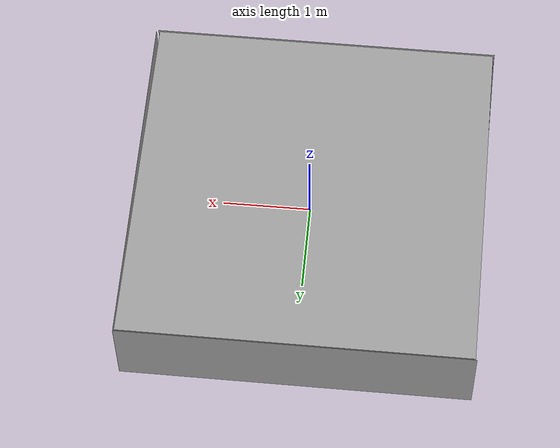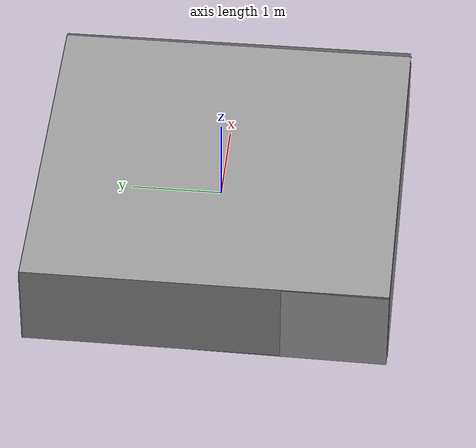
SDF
<?xml version='1.0'?>
<sdf version='1.6'>
  <model name='model_wall'>
    <model name='final_model_wall'>
      <link name='link_1'>
        <pose frame=''>-0.006898 7.8e-05 -0.002202 0 -0 0</pose>
        <inertial>
          <mass>15.7396</mass>
          <inertia>
            <ixx>22.1414</ixx>
            <ixy>0</ixy>
            <ixz>0</ixz>
            <iyy>21.7726</iyy>
            <iyz>0</iyz>
            <izz>41.2907</izz>
          </inertia>
          <pose frame=''>0 0 0 0 -0 0</pose>
        </inertial>
        <gravity>1</gravity>
        <self_collide>0</self_collide>
        <kinematic>0</kinematic>
        <visual name='visual'>
          <pose frame=''>0 0 0 0 -0 0</pose>
          <geometry>
            <box>
              <size>3.94963 3.98507 1</size>
            </box>
          </geometry>
          <material>
            <lighting>1</lighting>
            <script>
              <uri>file://media/materials/scripts/gazebo.material</uri>
              <name>Gazebo/Grey</name>
            </script>
            <ambient>0.3 0.3 0.3 1</ambient>
            <diffuse>0.7 0.7 0.7 1</diffuse>
            <specular>0.01 0.01 0.01 1</specular>
            <emissive>0 0 0 1</emissive>
            <shader type='vertex'>
              <normal_map>__default__</normal_map>
            </shader>
          </material>
          <cast_shadows>1</cast_shadows>
          <transparency>0</transparency>
        </visual>
        <collision name='collision'>
          <laser_retro>0</laser_retro>
          <max_contacts>10</max_contacts>
          <pose frame=''>0 0 0 0 -0 0</pose>
          <geometry>
            <box>
              <size>3.94963 3.98507 1</size>
            </box>
          </geometry>
          <surface>
            <friction>
              <ode>
                <mu>1</mu>
                <mu2>1</mu2>
                <fdir1>0 0 0</fdir1>
                <slip1>0</slip1>
                <slip2>0</slip2>
              </ode>
              <torsional>
                <coefficient>1</coefficient>
                <patch_radius>0</patch_radius>
                <surface_radius>0</surface_radius>
                <use_patch_radius>1</use_patch_radius>
                <ode>
                  <slip>0</slip>
                </ode>
              </torsional>
            </friction>
            <bounce>
              <restitution_coefficient>0</restitution_coefficient>
              <threshold>1e+06</threshold>
            </bounce>
            <contact>
              <collide_without_contact>0</collide_without_contact>
              <collide_without_contact_bitmask>1</collide_without_contact_bitmask>
              <collide_bitmask>1</collide_bitmask>
              <ode>
                <soft_cfm>0</soft_cfm>
                <soft_erp>0.2</soft_erp>
                <kp>1e+13</kp>
                <kd>1</kd>
                <max_vel>0.01</max_vel>
                <min_depth>0</min_depth>
              </ode>
              <bullet>
                <split_impulse>1</split_impulse>
                <split_impulse_penetration_threshold>-0.01</split_impulse_penetration_threshold>
                <soft_cfm>0</soft_cfm>
                <soft_erp>0.2</soft_erp>
                <kp>1e+13</kp>
                <kd>1</kd>
              </bullet>
            </contact>
          </surface>
        </collision>
      </link>
      <model name='wall1'>
        <link name='link_0'>
          <pose frame=''>0 0 0 0 -0 0</pose>
          <inertial>
            <mass>0.000270369</mass>
            <inertia>
              <ixx>2.25308e-05</ixx>
              <ixy>0</ixy>
              <ixz>0</ixz>
              <iyy>0.000379957</iyy>
              <iyz>0</iyz>
              <izz>0.000357427</izz>
            </inertia>
            <pose frame=''>0 0 0 0 -0 0</pose>
          </inertial>
          <visual name='visual'>
            <pose frame=''>0 0 0 0 -0 0</pose>
            <geometry>
              <box>
                <size>3.98296 6.2e-05 1</size>
              </box>
            </geometry>
            <material>
              <lighting>1</lighting>
              <script>
                <uri>model://wall1/materials/scripts</uri>
                <uri>model://wall1/materials/textures</uri>
                <name>wall1/Diffuse</name>
              </script>
              <ambient>0.3 0.3 0.3 1</ambient>
              <diffuse>0.7 0.7 0.7 1</diffuse>
              <specular>0.01 0.01 0.01 1</specular>
              <emissive>0 0 0 1</emissive>
            </material>
            <cast_shadows>1</cast_shadows>
            <transparency>0</transparency>
          </visual>
          <collision name='collision'>
            <laser_retro>0</laser_retro>
            <max_contacts>10</max_contacts>
            <pose frame=''>0 0 0 0 -0 0</pose>
            <geometry>
              <box>
                <size>3.98296 6.2e-05 1</size>
              </box>
            </geometry>
            <surface>
              <friction>
                <ode>
                  <mu>1</mu>
                  <mu2>1</mu2>
                  <fdir1>0 0 0</fdir1>
                  <slip1>0</slip1>
                  <slip2>0</slip2>
                </ode>
                <torsional>
                  <coefficient>1</coefficient>
                  <patch_radius>0</patch_radius>
                  <surface_radius>0</surface_radius>
                  <use_patch_radius>1</use_patch_radius>
                  <ode>
                    <slip>0</slip>
                  </ode>
                </torsional>
              </friction>
              <bounce>
                <restitution_coefficient>0</restitution_coefficient>
                <threshold>1e+06</threshold>
              </bounce>
              <contact>
                <collide_without_contact>0</collide_without_contact>
                <collide_without_contact_bitmask>1</collide_without_contact_bitmask>
                <collide_bitmask>1</collide_bitmask>
                <ode>
                  <soft_cfm>0</soft_cfm>
                  <soft_erp>0.2</soft_erp>
                  <kp>1e+13</kp>
                  <kd>1</kd>
                  <max_vel>0.01</max_vel>
                  <min_depth>0</min_depth>
                </ode>
                <bullet>
                  <split_impulse>1</split_impulse>
                  <split_impulse_penetration_threshold>-0.01</split_impulse_penetration_threshold>
                  <soft_cfm>0</soft_cfm>
                  <soft_erp>0.2</soft_erp>
                  <kp>1e+13</kp>
                  <kd>1</kd>
                </bullet>
              </contact>
            </surface>
          </collision>
        </link>
        <static>0</static>
        <allow_auto_disable>1</allow_auto_disable>
        <pose frame=''>-0.006898 -1.99992 0.014308 0 -0 0</pose>
      </model>
      <model name='wall1_0'>
        <link name='link_0'>
          <pose frame=''>0 0 0 0 -0 0</pose>
          <inertial>
            <mass>0.000270369</mass>
            <inertia>
              <ixx>2.25308e-05</ixx>
              <ixy>0</ixy>
              <ixz>0</ixz>
              <iyy>0.000379957</iyy>
              <iyz>0</iyz>
              <izz>0.000357427</izz>
            </inertia>
            <pose frame=''>0 0 0 0 -0 0</pose>
          </inertial>
          <visual name='visual'>
            <pose frame=''>0 0 0 0 -0 0</pose>
            <geometry>
              <box>
                <size>3.98296 6.2e-05 1</size>
              </box>
            </geometry>
            <material>
              <lighting>1</lighting>
              <script>
                <uri>model://wall2/materials/scripts</uri>
                <uri>model://wall2/materials/textures</uri>
                <name>wall2/Diffuse</name>
              </script>
              <ambient>0.3 0.3 0.3 1</ambient>
              <diffuse>0.7 0.7 0.7 1</diffuse>
              <specular>0.01 0.01 0.01 1</specular>
              <emissive>0 0 0 1</emissive>
            </material>
            <cast_shadows>1</cast_shadows>
            <transparency>0</transparency>
          </visual>
          <collision name='collision'>
            <laser_retro>0</laser_retro>
            <max_contacts>10</max_contacts>
            <pose frame=''>0 0 0 0 -0 0</pose>
            <geometry>
              <box>
                <size>3.98296 6.2e-05 1</size>
              </box>
            </geometry>
            <surface>
              <friction>
                <ode>
                  <mu>1</mu>
                  <mu2>1</mu2>
                  <fdir1>0 0 0</fdir1>
                  <slip1>0</slip1>
                  <slip2>0</slip2>
                </ode>
                <torsional>
                  <coefficient>1</coefficient>
                  <patch_radius>0</patch_radius>
                  <surface_radius>0</surface_radius>
                  <use_patch_radius>1</use_patch_radius>
                  <ode>
                    <slip>0</slip>
                  </ode>
                </torsional>
              </friction>
              <bounce>
                <restitution_coefficient>0</restitution_coefficient>
                <threshold>1e+06</threshold>
              </bounce>
              <contact>
                <collide_without_contact>0</collide_without_contact>
                <collide_without_contact_bitmask>1</collide_without_contact_bitmask>
                <collide_bitmask>1</collide_bitmask>
                <ode>
                  <soft_cfm>0</soft_cfm>
                  <soft_erp>0.2</soft_erp>
                  <kp>1e+13</kp>
                  <kd>1</kd>
                  <max_vel>0.01</max_vel>
                  <min_depth>0</min_depth>
                </ode>
                <bullet>
                  <split_impulse>1</split_impulse>
                  <split_impulse_penetration_threshold>-0.01</split_impulse_penetration_threshold>
                  <soft_cfm>0</soft_cfm>
                  <soft_erp>0.2</soft_erp>
                  <kp>1e+13</kp>
                  <kd>1</kd>
                </bullet>
              </contact>
            </surface>
          </collision>
        </link>
        <static>0</static>
        <allow_auto_disable>1</allow_auto_disable>
        <pose frame=''>-0.006898 2.00008 -0.012098 0 -0 0</pose>
      </model>
      <model name='wall1_1'>
        <link name='link_0'>
          <pose frame=''>0 0 0 0 -0 0</pose>
          <inertial>
            <mass>0.000270369</mass>
            <inertia>
              <ixx>2.25308e-05</ixx>
              <ixy>0</ixy>
              <ixz>0</ixz>
              <iyy>0.000379957</iyy>
              <iyz>0</iyz>
              <izz>0.000357427</izz>
            </inertia>
            <pose frame=''>0 0 0 0 -0 0</pose>
          </inertial>
          <visual name='visual'>
            <pose frame=''>0 0 0 0 -0 0</pose>
            <geometry>
              <box>
                <size>3.98296 6.2e-05 1</size>
              </box>
            </geometry>
            <material>
              <lighting>1</lighting>
              <script>
                <uri>model://wall3/materials/scripts</uri>
                <uri>model://wall3/materials/textures</uri>
                <name>wall3/Diffuse</name>
              </script>
              <ambient>0.3 0.3 0.3 1</ambient>
              <diffuse>0.7 0.7 0.7 1</diffuse>
              <specular>0.01 0.01 0.01 1</specular>
              <emissive>0 0 0 1</emissive>
            </material>
            <cast_shadows>1</cast_shadows>
            <transparency>0</transparency>
          </visual>
          <collision name='collision'>
            <laser_retro>0</laser_retro>
            <max_contacts>10</max_contacts>
            <pose frame=''>0 0 0 0 -0 0</pose>
            <geometry>
              <box>
                <size>3.98296 6.2e-05 1</size>
              </box>
            </geometry>
            <surface>
              <friction>
                <ode>
                  <mu>1</mu>
                  <mu2>1</mu2>
                  <fdir1>0 0 0</fdir1>
                  <slip1>0</slip1>
                  <slip2>0</slip2>
                </ode>
                <torsional>
                  <coefficient>1</coefficient>
                  <patch_radius>0</patch_radius>
                  <surface_radius>0</surface_radius>
                  <use_patch_radius>1</use_patch_radius>
                  <ode>
                    <slip>0</slip>
                  </ode>
                </torsional>
              </friction>
              <bounce>
                <restitution_coefficient>0</restitution_coefficient>
                <threshold>1e+06</threshold>
              </bounce>
              <contact>
                <collide_without_contact>0</collide_without_contact>
                <collide_without_contact_bitmask>1</collide_without_contact_bitmask>
                <collide_bitmask>1</collide_bitmask>
                <ode>
                  <soft_cfm>0</soft_cfm>
                  <soft_erp>0.2</soft_erp>
                  <kp>1e+13</kp>
                  <kd>1</kd>
                  <max_vel>0.01</max_vel>
                  <min_depth>0</min_depth>
                </ode>
                <bullet>
                  <split_impulse>1</split_impulse>
                  <split_impulse_penetration_threshold>-0.01</split_impulse_penetration_threshold>
                  <soft_cfm>0</soft_cfm>
                  <soft_erp>0.2</soft_erp>
                  <kp>1e+13</kp>
                  <kd>1</kd>
                </bullet>
              </contact>
            </surface>
          </collision>
        </link>
        <static>0</static>
        <allow_auto_disable>1</allow_auto_disable>
        <pose frame=''>1.9931 7.8e-05 0.014319 0 -0 1.57841</pose>
      </model>
      <model name='wall1_2'>
        <link name='link_0'>
          <pose frame=''>0 0 0 0 -0 0</pose>
          <inertial>
            <mass>0.000270369</mass>
            <inertia>
              <ixx>2.25308e-05</ixx>
              <ixy>0</ixy>
              <ixz>0</ixz>
              <iyy>0.000379957</iyy>
              <iyz>0</iyz>
              <izz>0.000357427</izz>
            </inertia>
            <pose frame=''>0 0 0 0 -0 0</pose>
          </inertial>
          <visual name='visual'>
            <pose frame=''>0 0 0 0 -0 0</pose>
            <geometry>
              <box>
                <size>3.98296 6.2e-05 1</size>
              </box>
            </geometry>
            <material>
              <lighting>1</lighting>
              <script>
                <uri>model://wall5/materials/scripts</uri>
                <uri>model://wall5/materials/textures</uri>
                <name>wall5/Diffuse</name>
              </script>
              <ambient>0.3 0.3 0.3 1</ambient>
              <diffuse>0.7 0.7 0.7 1</diffuse>
              <specular>0.01 0.01 0.01 1</specular>
              <emissive>0 0 0 1</emissive>
            </material>
            <cast_shadows>1</cast_shadows>
            <transparency>0</transparency>
          </visual>
          <collision name='collision'>
            <laser_retro>0</laser_retro>
            <max_contacts>10</max_contacts>
            <pose frame=''>0 0 0 0 -0 0</pose>
            <geometry>
              <box>
                <size>3.98296 6.2e-05 1</size>
              </box>
            </geometry>
            <surface>
              <friction>
                <ode>
                  <mu>1</mu>
                  <mu2>1</mu2>
                  <fdir1>0 0 0</fdir1>
                  <slip1>0</slip1>
                  <slip2>0</slip2>
                </ode>
                <torsional>
                  <coefficient>1</coefficient>
                  <patch_radius>0</patch_radius>
                  <surface_radius>0</surface_radius>
                  <use_patch_radius>1</use_patch_radius>
                  <ode>
                    <slip>0</slip>
                  </ode>
                </torsional>
              </friction>
              <bounce>
                <restitution_coefficient>0</restitution_coefficient>
                <threshold>1e+06</threshold>
              </bounce>
              <contact>
                <collide_without_contact>0</collide_without_contact>
                <collide_without_contact_bitmask>1</collide_without_contact_bitmask>
                <collide_bitmask>1</collide_bitmask>
                <ode>
                  <soft_cfm>0</soft_cfm>
                  <soft_erp>0.2</soft_erp>
                  <kp>1e+13</kp>
                  <kd>1</kd>
                  <max_vel>0.01</max_vel>
                  <min_depth>0</min_depth>
                </ode>
                <bullet>
                  <split_impulse>1</split_impulse>
                  <split_impulse_penetration_threshold>-0.01</split_impulse_penetration_threshold>
                  <soft_cfm>0</soft_cfm>
                  <soft_erp>0.2</soft_erp>
                  <kp>1e+13</kp>
                  <kd>1</kd>
                </bullet>
              </contact>
            </surface>
          </collision>
        </link>
        <static>0</static>
        <allow_auto_disable>1</allow_auto_disable>
        <pose frame=''>-1.97241 -0.000307 -0.014523 0 -0 1.55963</pose>
      </model>
      <static>0</static>
      <allow_auto_disable>1</allow_auto_disable>
      <pose frame=''>-0 -2e-06 -0 0 -0 0</pose>
    </model>
    <static>0</static>
    <allow_auto_disable>1</allow_auto_disable>
  </model>
</sdf>
